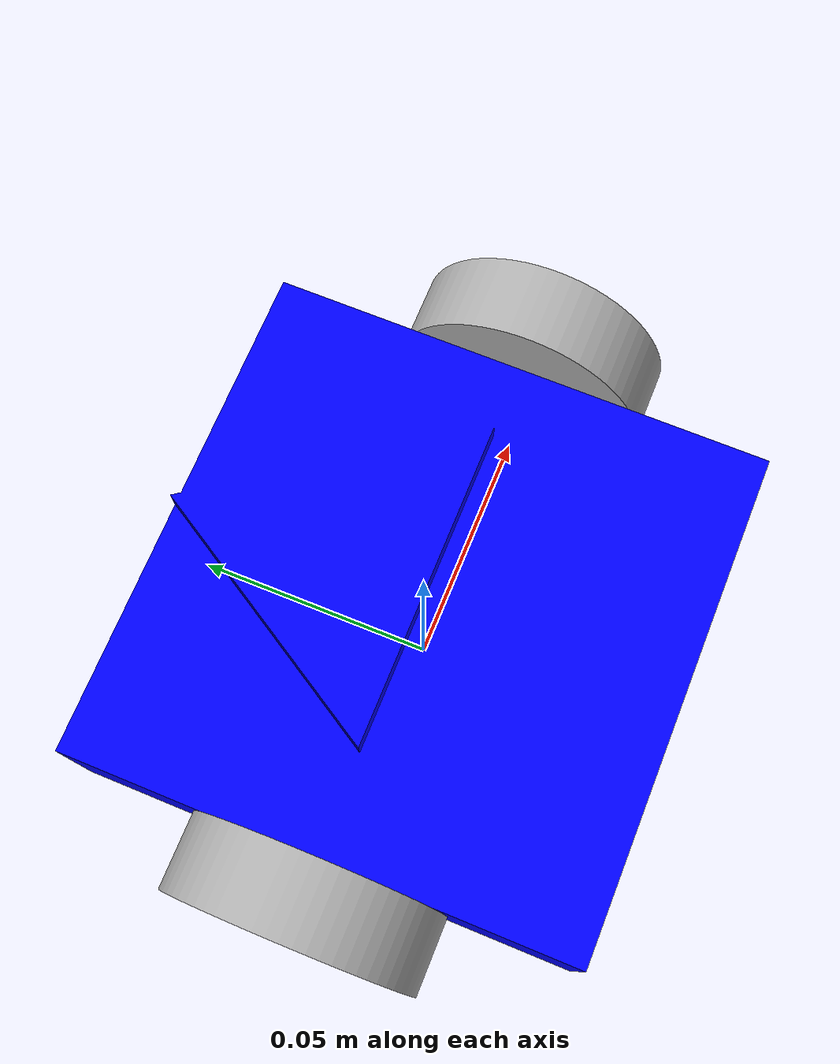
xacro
<?xml version="1.0" ?>
<robot name="basic_cart" xmlns:xacro="http://www.ros.org/wiki/xacro">

  <!-- Include Files -->
  <xacro:include filename="$(find basic_cart_description)/urdf/materials.xacro" />
  <!-- Robot Description -->
  <link name="base_link">
    <inertial>
      <origin xyz="5.211807283503431e-05 0.0005211807283108324 0.02535130030111956" rpy="0 0 0"/>
      <mass value="2.0396395637624525"/>
      <inertia ixx="0.001799" iyy="0.001768" izz="0.003325" ixy="-1e-06" iyz="-1.6e-05" ixz="-2e-06"/>
    </inertial>

    <visual>
      <origin xyz="0 0 0" rpy="0 0 0"/>
      <geometry>
        <mesh filename="package://basic_cart_description/meshes/base_link.stl" scale="0.001 0.001 0.001"/>
      </geometry>
      <material name="blue">
        <color rgba = "0 0 1 1"/>
      </material>
    </visual>
    <collision>
      <origin xyz="0 0 0" rpy="0 0 0"/>
      <geometry>
        <mesh filename="package://basic_cart_description/meshes/base_link.stl" scale="0.001 0.001 0.001"/>
      </geometry>
    </collision>
  </link>

  <link name="right_wheel_1">
    <inertial>
      <origin xyz="0.007500000000000007 0.0 3.469446951953614e-18" rpy="0 0 0"/>
      <mass value="0.0035342917352885156"/>
      <inertia ixx="1e-06" iyy="1e-06" izz="1e-06" ixy="0.0" iyz="0.0" ixz="0.0"/>
    </inertial>
    <visual>
      <origin xyz="-0.05 -0.0 -0.025" rpy="0 0 0"/>
      <geometry>
        <mesh filename="package://basic_cart_description/meshes/right_wheel_1.stl" scale="0.001 0.001 0.001"/>
      </geometry>
      <material name="silver"/>
    </visual>
    <collision>
      <origin xyz="-0.05 -0.0 -0.025" rpy="0 0 0"/>
      <geometry>
        <mesh filename="package://basic_cart_description/meshes/right_wheel_1.stl" scale="0.001 0.001 0.001"/>
      </geometry>
    </collision>
  </link>

  <link name="left_wheel_1">
    <inertial>
      <origin xyz="-0.007500000000000007 0.0 3.469446951953614e-18" rpy="0 0 0"/>
      <mass value="0.0035342917352885156"/>
      <inertia ixx="1e-06" iyy="1e-06" izz="1e-06" ixy="-0.0" iyz="0.0" ixz="0.0"/>
    </inertial>
    <visual>
      <origin xyz="0.05 -0.0 -0.025" rpy="0 0 0"/>
      <geometry>
        <mesh filename="package://basic_cart_description/meshes/left_wheel_1.stl" scale="0.001 0.001 0.001"/>
      </geometry>
      <material name="silver"/>
    </visual>
    <collision>
      <origin xyz="0.05 -0.0 -0.025" rpy="0 0 0"/>
      <geometry>
        <mesh filename="package://basic_cart_description/meshes/left_wheel_1.stl" scale="0.001 0.001 0.001"/>
      </geometry>
    </collision>
  </link>

  <joint name="Revolute 1" type="continuous">
    <origin xyz="0.05 0.0 0.025" rpy="0 0 0"/>
    <parent link="base_link"/>
    <child link="right_wheel_1"/>
    <axis xyz="1.0 0.0 0.0"/>
  </joint>

  <joint name="Revolute 2" type="continuous">
    <origin xyz="-0.05 0.0 0.025" rpy="0 0 0"/>
    <parent link="base_link"/>
    <child link="left_wheel_1"/>
    <axis xyz="-1.0 0.0 0.0"/>
  </joint>

</robot>

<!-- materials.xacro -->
<robot name="basic_cart" xmlns:xacro="http://www.ros.org/wiki/xacro" >

<material name="silver">
  <color rgba="0.700 0.700 0.700 1.000"/>
</material>

</robot>
